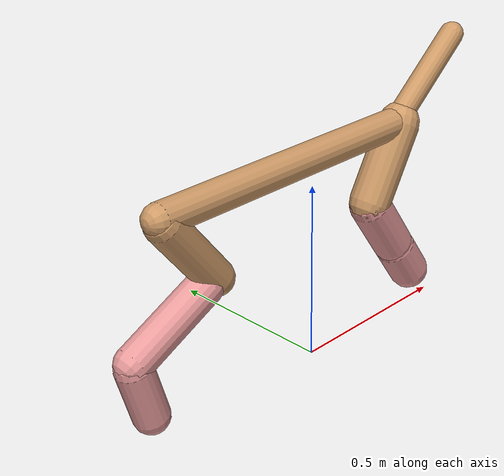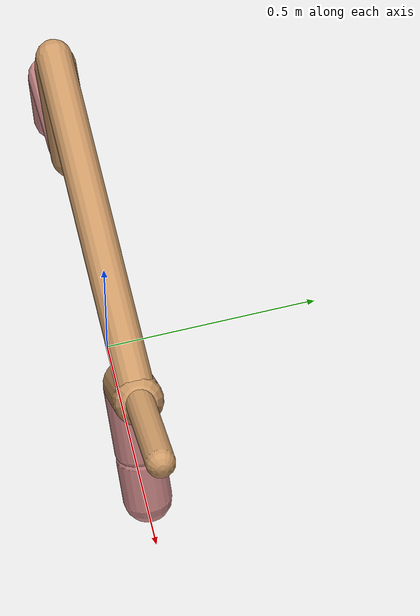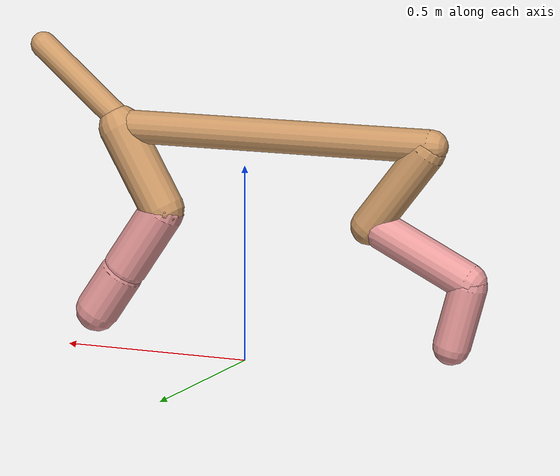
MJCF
<mujoco model="cheetah">
  <compiler angle="radian" coordinate="local" inertiafromgeom="true" settotalmass="14" />
  <default>
    <joint armature=".1" damping=".01" limited="true" solimplimit="0 .8 .03" solreflimit=".02 1" stiffness="8" />
    <geom conaffinity="0" condim="3" contype="1" friction="0.8 .1 .1" rgba="0.8 0.6 .4 1" solimp="0.0 0.8 0.01" solref="0.02 1" />
    <motor ctrllimited="true" ctrlrange="-1 1" />
  </default>
  <size nstack="300000" nuser_geom="1" />
  <option gravity="0 0 -9.81" timestep="0.01" />
  <worldbody>
    <body name="torso" pos="0.0 0.0 0.5815451458657179">
      <joint armature="0" axis="1 0 0" damping="0" limited="false" name="ignorex" pos="0 0 0" stiffness="0" type="slide" />
      <joint armature="0" axis="0 0 1" damping="0" limited="false" name="ignorez" pos="0 0 0" stiffness="0" type="slide" />
      <joint armature="0" axis="0 1 0" damping="0" limited="false" name="ignorey" pos="0 0 0" stiffness="0" type="hinge" />
      <geom fromto="-0.5 0.0 0.0 0.3500091436616426 0.0 0.0" name="torso" size="0.04238947013354842" type="capsule" />
      <geom axisangle="0 1 0 .87" name="head" pos="0.4500091436616426 0.0 0.1" size="0.03349372859970499 0.15" type="capsule" />

      <body name="bthigh" pos="-.5 0 0">
        <joint axis="0 1 0" damping="6" name="bthigh" pos="0 0 0" range="-.52 1.05" stiffness="240" type="hinge" />
        <geom axisangle="0 1 0 -3.8" name="bthigh" pos="0.08648516552831163 0.0 -0.11243071518680511" size="0.04773040841299353 0.12283402337715982" type="capsule" />
        <body name="bshin" pos="0.13297033105662326 0.0 -0.21486143037361022">
          <joint axis="0 1 0" damping="4.5" name="bshin" pos="0 0 0" range="-.785 .785" stiffness="180" type="hinge" />
          <geom axisangle="0 1 0 -2.03" name="bshin" pos="-0.1194904977173758 0.0 -0.0597452488586879" rgba="0.9 0.6 0.6 1" size="0.04773040841299353 0.12706967935568259" type="capsule" />
          <body name="bfoot" pos="-0.2389809954347516 0.0 -0.1194904977173758">
            <joint axis="0 1 0" damping="3" name="bfoot" pos="0 0 0" range="-.4 .785" stiffness="120" type="hinge" />
            <geom axisangle="0 1 0 -.27" name="bfoot" pos="0.0257541982946312 0.0 -0.08327190781930756" rgba="0.9 0.6 0.6 1" size="0.04773040841299353 0.07963033239622776" type="capsule" />
            <inertial mass="10" />
          </body>
        </body>
      </body>
      <body name="fthigh" pos="0.3500091436616426 0.0 0.0">
        <joint axis="0 1 0" damping="4.5" name="fthigh" pos="0 0 0" range="-1.5 0.8" stiffness="180" type="hinge" />
        <geom axisangle="0 1 0 .52" name="fthigh" pos="-0.06169640810197081 0.0 -0.10576527103194994" size="0.056990444546808294 0.11652040209219718" type="capsule" />
        <body name="fshin" pos="-0.12339281620394162 0.0 -0.21153054206389987">
          <joint axis="0 1 0" damping="3" name="fshin" pos="0 0 0" range="-1.2 1.1" stiffness="120" type="hinge" />
          <geom axisangle="0 1 0 -.6" name="fshin" pos="0.05731009936801344 0.0 -0.07935244527878785" rgba="0.9 0.6 0.6 1" size="0.056990444546808294 0.09286588437423234" type="capsule" />
          <body name="ffoot" pos="0.11462019873602688 0.0 -0.1587048905575757">
            <joint axis="0 1 0" damping="1.5" name="ffoot" pos="0 0 0" range="-3.1 -0.3" stiffness="60" type="hinge" />
            <geom axisangle="0 1 0 -.6" name="ffoot" pos="0.04030975385766398 0.0 -0.06270406155636621" rgba="0.9 0.6 0.6 1" size="0.056990444546808294 0.061326527416945886" type="capsule" />
            <inertial mass="10" />
          </body>
        </body>
      </body>
    </body>
  </worldbody>
  <actuator>
    <motor gear="120" joint="bthigh" name="bthigh" />
    <motor gear="90" joint="bshin" name="bshin" />
    <motor gear="60" joint="bfoot" name="bfoot" />
    <motor gear="120" joint="fthigh" name="fthigh" />
    <motor gear="60" joint="fshin" name="fshin" />
    <motor gear="30" joint="ffoot" name="ffoot" />
  </actuator>
</mujoco>
